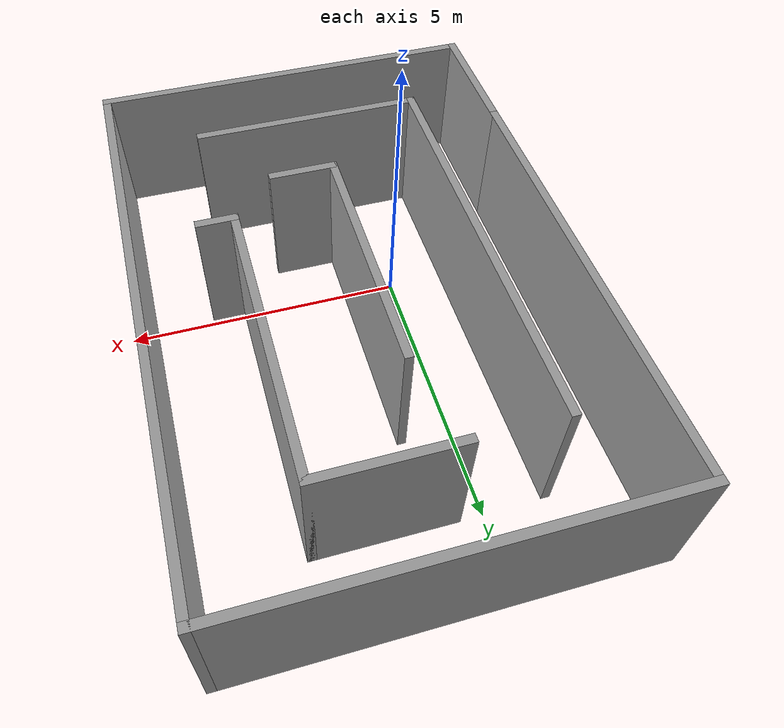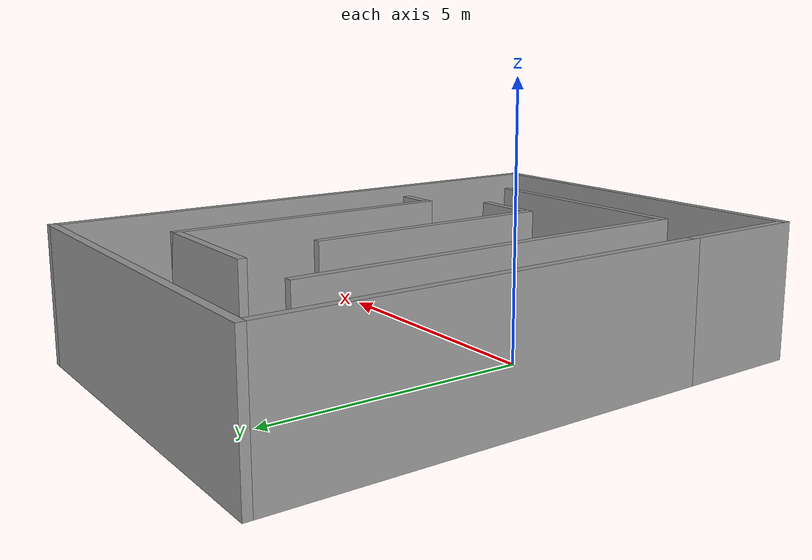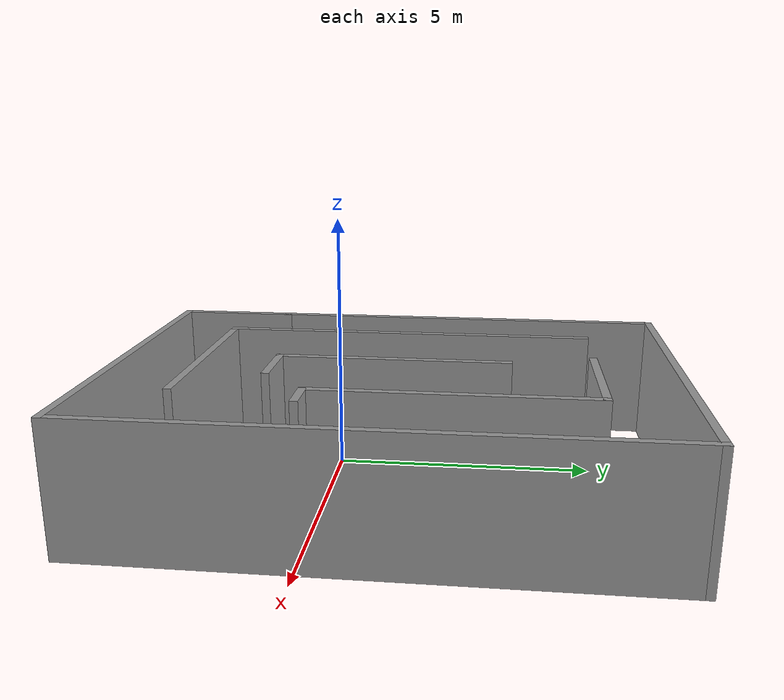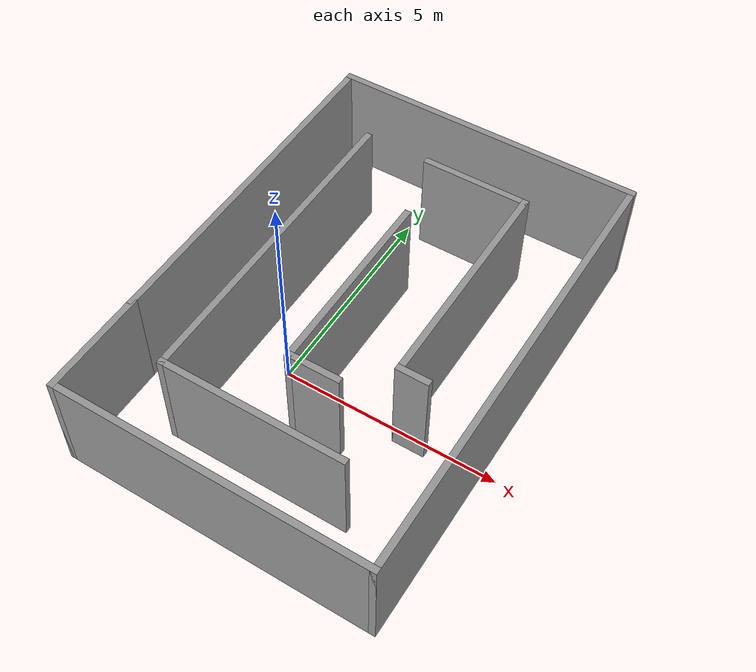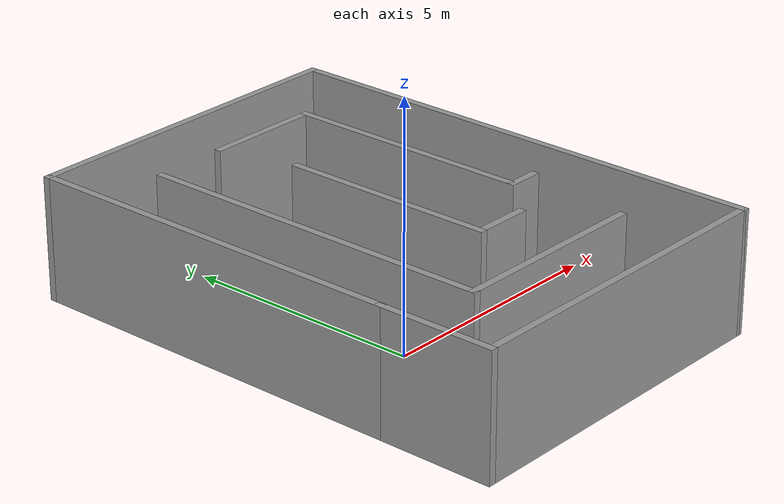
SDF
<?xml version='1.0'?>
<sdf version='1.6'>
  <model name='maze3'>
    <pose frame=''>1.06 1.215 0 0 -0 0</pose>
    <link name='Wall_0'>
      <collision name='Wall_0_Collision'>
        <geometry>
          <box>
            <size>2.5 0.15 2.5</size>
          </box>
        </geometry>
        <pose frame=''>0 0 1.25 0 -0 0</pose>
      </collision>
      <visual name='Wall_0_Visual'>
        <pose frame=''>0 0 1.25 0 -0 0</pose>
        <geometry>
          <box>
            <size>2.5 0.15 2.5</size>
          </box>
        </geometry>
        <material>
          <script>
            <uri>file://media/materials/scripts/gazebo.material</uri>
            <name>Gazebo/Grey</name>
          </script>
          <ambient>1 1 1 1</ambient>
        </material>
        <meta>
          <layer>0</layer>
        </meta>
      </visual>
      <pose frame=''>-3.55 -4 0 0 -0 -1.5708</pose>
    </link>
    <link name='Wall_1'>
      <collision name='Wall_1_Collision'>
        <geometry>
          <box>
            <size>7.25 0.15 2.5</size>
          </box>
        </geometry>
        <pose frame=''>0 0 1.25 0 -0 0</pose>
      </collision>
      <visual name='Wall_1_Visual'>
        <pose frame=''>0 0 1.25 0 -0 0</pose>
        <geometry>
          <box>
            <size>7.25 0.15 2.5</size>
          </box>
        </geometry>
        <material>
          <script>
            <uri>file://media/materials/scripts/gazebo.material</uri>
            <name>Gazebo/Grey</name>
          </script>
          <ambient>1 1 1 1</ambient>
        </material>
        <meta>
          <layer>0</layer>
        </meta>
      </visual>
      <pose frame=''>-0 -5.175 0 0 -0 0</pose>
    </link>
    <link name='Wall_10'>
      <collision name='Wall_10_Collision'>
        <geometry>
          <box>
            <size>2.5 0.15 2.5</size>
          </box>
        </geometry>
        <pose frame=''>0 0 1.25 0 -0 0</pose>
      </collision>
      <visual name='Wall_10_Visual'>
        <pose frame=''>0 0 1.25 0 -0 0</pose>
        <geometry>
          <box>
            <size>2.5 0.15 2.5</size>
          </box>
        </geometry>
        <material>
          <script>
            <uri>file://media/materials/scripts/gazebo.material</uri>
            <name>Gazebo/Grey</name>
          </script>
          <ambient>1 1 1 1</ambient>
        </material>
        <meta>
          <layer>0</layer>
        </meta>
      </visual>
      <pose frame=''>0.570877 3.70832 0 0 -0 0</pose>
    </link>
    <link name='Wall_11'>
      <collision name='Wall_11_Collision'>
        <geometry>
          <box>
            <size>5.25 0.15 2.5</size>
          </box>
        </geometry>
        <pose frame=''>0 0 1.25 0 -0 0</pose>
      </collision>
      <visual name='Wall_11_Visual'>
        <pose frame=''>0 0 1.25 0 -0 0</pose>
        <geometry>
          <box>
            <size>5.25 0.15 2.5</size>
          </box>
        </geometry>
        <material>
          <script>
            <uri>file://media/materials/scripts/gazebo.material</uri>
            <name>Gazebo/Grey</name>
          </script>
          <ambient>1 1 1 1</ambient>
        </material>
        <meta>
          <layer>0</layer>
        </meta>
      </visual>
      <pose frame=''>1.74588 1.15832 0 0 -0 -1.5708</pose>
    </link>
    <link name='Wall_12'>
      <collision name='Wall_12_Collision'>
        <geometry>
          <box>
            <size>0.75 0.15 2.5</size>
          </box>
        </geometry>
        <pose frame=''>0 0 1.25 0 -0 0</pose>
      </collision>
      <visual name='Wall_12_Visual'>
        <pose frame=''>0 0 1.25 0 -0 0</pose>
        <geometry>
          <box>
            <size>0.75 0.15 2.5</size>
          </box>
        </geometry>
        <material>
          <script>
            <uri>file://media/materials/scripts/gazebo.material</uri>
            <name>Gazebo/Grey</name>
          </script>
          <ambient>1 1 1 1</ambient>
        </material>
        <meta>
          <layer>0</layer>
        </meta>
      </visual>
      <pose frame=''>2.04588 -1.39168 0 0 -0 0</pose>
    </link>
    <link name='Wall_14'>
      <collision name='Wall_14_Collision'>
        <geometry>
          <box>
            <size>4.5 0.15 2.5</size>
          </box>
        </geometry>
        <pose frame=''>0 0 1.25 0 -0 0</pose>
      </collision>
      <visual name='Wall_14_Visual'>
        <pose frame=''>0 0 1.25 0 -0 0</pose>
        <geometry>
          <box>
            <size>4.5 0.15 2.5</size>
          </box>
        </geometry>
        <material>
          <script>
            <uri>file://media/materials/scripts/gazebo.material</uri>
            <name>Gazebo/Grey</name>
          </script>
          <ambient>1 1 1 1</ambient>
        </material>
        <meta>
          <layer>0</layer>
        </meta>
      </visual>
      <pose frame=''>-0.20512 -0.062693 0 0 -0 -1.5708</pose>
    </link>
    <link name='Wall_15'>
      <collision name='Wall_15_Collision'>
        <geometry>
          <box>
            <size>1.25 0.15 2.5</size>
          </box>
        </geometry>
        <pose frame=''>0 0 1.25 0 -0 0</pose>
      </collision>
      <visual name='Wall_15_Visual'>
        <pose frame=''>0 0 1.25 0 -0 0</pose>
        <geometry>
          <box>
            <size>1.25 0.15 2.5</size>
          </box>
        </geometry>
        <material>
          <script>
            <uri>file://media/materials/scripts/gazebo.material</uri>
            <name>Gazebo/Grey</name>
          </script>
          <ambient>1 1 1 1</ambient>
        </material>
        <meta>
          <layer>0</layer>
        </meta>
      </visual>
      <pose frame=''>0.34488 -2.23769 0 0 -0 0</pose>
    </link>
    <link name='Wall_2'>
      <collision name='Wall_2_Collision'>
        <geometry>
          <box>
            <size>10.5 0.15 2.5</size>
          </box>
        </geometry>
        <pose frame=''>0 0 1.25 0 -0 0</pose>
      </collision>
      <visual name='Wall_2_Visual'>
        <pose frame=''>0 0 1.25 0 -0 0</pose>
        <geometry>
          <box>
            <size>10.5 0.15 2.5</size>
          </box>
        </geometry>
        <material>
          <script>
            <uri>file://media/materials/scripts/gazebo.material</uri>
            <name>Gazebo/Grey</name>
          </script>
          <ambient>1 1 1 1</ambient>
        </material>
        <meta>
          <layer>0</layer>
        </meta>
      </visual>
      <pose frame=''>3.55 -0 0 0 -0 1.5708</pose>
    </link>
    <link name='Wall_3'>
      <collision name='Wall_3_Collision'>
        <geometry>
          <box>
            <size>7.25 0.15 2.5</size>
          </box>
        </geometry>
        <pose frame=''>0 0 1.25 0 -0 0</pose>
      </collision>
      <visual name='Wall_3_Visual'>
        <pose frame=''>0 0 1.25 0 -0 0</pose>
        <geometry>
          <box>
            <size>7.25 0.15 2.5</size>
          </box>
        </geometry>
        <material>
          <script>
            <uri>file://media/materials/scripts/gazebo.material</uri>
            <name>Gazebo/Grey</name>
          </script>
          <ambient>1 1 1 1</ambient>
        </material>
        <meta>
          <layer>0</layer>
        </meta>
      </visual>
      <pose frame=''>-0 5.175 0 0 -0 3.14159</pose>
    </link>
    <link name='Wall_4'>
      <collision name='Wall_4_Collision'>
        <geometry>
          <box>
            <size>8.15 0.15 2.5</size>
          </box>
        </geometry>
        <pose frame=''>0 0 1.25 0 -0 0</pose>
      </collision>
      <visual name='Wall_4_Visual'>
        <pose frame=''>0 0 1.25 0 -0 0</pose>
        <geometry>
          <box>
            <size>8.15 0.15 2.5</size>
          </box>
        </geometry>
        <material>
          <script>
            <uri>file://media/materials/scripts/gazebo.material</uri>
            <name>Gazebo/Grey</name>
          </script>
          <ambient>1 1 1 1</ambient>
        </material>
        <meta>
          <layer>0</layer>
        </meta>
      </visual>
      <pose frame=''>-3.55 1.175 0 0 -0 -1.5708</pose>
    </link>
    <link name='Wall_6'>
      <collision name='Wall_6_Collision'>
        <geometry>
          <box>
            <size>7.5 0.15 2.5</size>
          </box>
        </geometry>
        <pose frame=''>0 0 1.25 0 -0 0</pose>
      </collision>
      <visual name='Wall_6_Visual'>
        <pose frame=''>0 0 1.25 0 -0 0</pose>
        <geometry>
          <box>
            <size>7.5 0.15 2.5</size>
          </box>
        </geometry>
        <material>
          <script>
            <uri>file://media/materials/scripts/gazebo.material</uri>
            <name>Gazebo/Grey</name>
          </script>
          <ambient>1 1 1 1</ambient>
        </material>
        <meta>
          <layer>0</layer>
        </meta>
      </visual>
      <pose frame=''>-2.14693 0.006719 0 0 -0 -1.5708</pose>
    </link>
    <link name='Wall_7'>
      <collision name='Wall_7_Collision'>
        <geometry>
          <box>
            <size>4.25 0.15 2.5</size>
          </box>
        </geometry>
        <pose frame=''>0 0 1.25 0 -0 0</pose>
      </collision>
      <visual name='Wall_7_Visual'>
        <pose frame=''>0 0 1.25 0 -0 0</pose>
        <geometry>
          <box>
            <size>4.25 0.15 2.5</size>
          </box>
        </geometry>
        <material>
          <script>
            <uri>file://media/materials/scripts/gazebo.material</uri>
            <name>Gazebo/Grey</name>
          </script>
          <ambient>1 1 1 1</ambient>
        </material>
        <meta>
          <layer>0</layer>
        </meta>
      </visual>
      <pose frame=''>-0.096934 -3.66828 0 0 -0 0</pose>
    </link>
    <static>1</static>
  </model>
</sdf>
